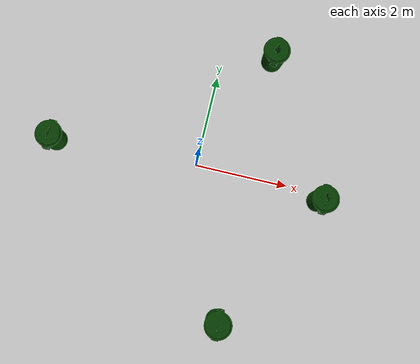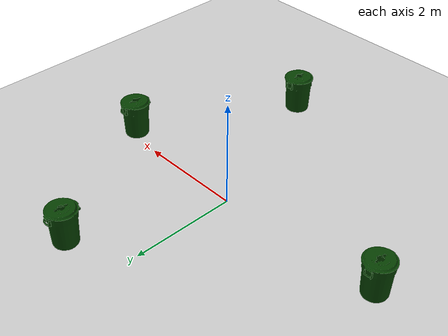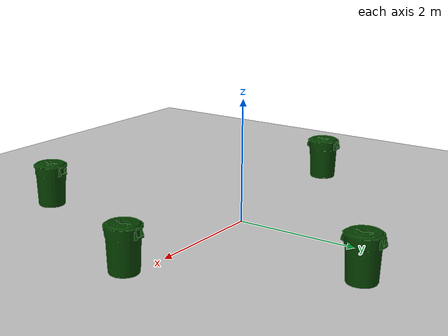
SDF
<sdf version="1.7">
 <world name="default">
  <light name="sun" type="directional">
   <pose>0 0 10 0 -0 0</pose>
   <diffuse>0.8 0.8 0.8 1</diffuse>
   <specular>0.2 0.2 0.2 1</specular>
   <attenuation>
    <range>1000</range>
    <constant>0.9</constant>
    <linear>0.01</linear>
    <quadratic>0.001</quadratic>
   </attenuation>
   <direction>-0.5 0.1 -0.9</direction>
   <spot><inner_angle>0</inner_angle><outer_angle>0</outer_angle><falloff>0</falloff></spot>
  </light>
  <model name="ground_plane">
   <static>1</static>
   <link name="link">
    <collision name="collision">
     <geometry><plane><normal>0 0 1</normal><size>100 100</size></plane></geometry>
     <surface>
      <contact><collide_bitmask>65535</collide_bitmask></contact>
      <friction><ode><mu>100</mu><mu2>50</mu2></ode></friction>
     </surface>
    </collision>
    <visual name="visual">
     <cast_shadows>0</cast_shadows>
     <geometry><plane><normal>0 0 1</normal><size>100 100</size></plane></geometry>
     <material>
      <script><uri>file://media/materials/scripts/gazebo.material</uri><name>Gazebo/Grey</name></script>
     </material>
    </visual>
   </link>
  </model>
  <gravity>0 0 -9.8</gravity>
  <magnetic_field>6e-06 2.3e-05 -4.2e-05</magnetic_field>
  <atmosphere type="adiabatic"/>
  <physics type="ode">
   <max_step_size>0.001</max_step_size>
   <real_time_factor>1</real_time_factor>
   <real_time_update_rate>1000</real_time_update_rate>
  </physics>
  <scene><ambient>0.4 0.4 0.4 1</ambient><background>0.7 0.7 0.7 1</background><shadows>1</shadows></scene>
  <spherical_coordinates>
   <surface_model>EARTH_WGS84</surface_model>
   <latitude_deg>0</latitude_deg>
   <longitude_deg>0</longitude_deg>
   <elevation>0</elevation>
   <heading_deg>0</heading_deg>
  </spherical_coordinates>
  <model name="first_2015_trash_can">
   <link name="link">
    <inertial>
     <pose>0 0 0.3683 0 -0 0</pose>
     <mass>4.83076</mass>
     <inertia>
      <ixx>0.281534</ixx>
      <ixy>0</ixy>
      <ixz>0</ixz>
      <iyy>0.281534</iyy>
      <iyz>0</iyz>
      <izz>0.126223</izz>
     </inertia>
    </inertial>
    <visual name="visual">
     <geometry><mesh><uri>model://first_2015_trash_can/meshes/trash_can.dae</uri></mesh></geometry>
    </visual>
    <collision name="collision">
     <geometry><mesh><uri>model://first_2015_trash_can/meshes/trash_can.dae</uri></mesh></geometry>
    </collision>
   </link>
   <pose>2.70974 -0.158559 -4e-06 5e-06 1.7e-05 -0.000205</pose>
  </model>
  <model name="first_2015_trash_can_0">
   <link name="link">
    <inertial>
     <pose>0 0 0.3683 0 -0 0</pose>
     <mass>4.83076</mass>
     <inertia>
      <ixx>0.281534</ixx>
      <ixy>0</ixy>
      <ixz>0</ixz>
      <iyy>0.281534</iyy>
      <iyz>0</iyz>
      <izz>0.126223</izz>
     </inertia>
    </inertial>
    <visual name="visual">
     <geometry><mesh><uri>model://first_2015_trash_can/meshes/trash_can.dae</uri></mesh></geometry>
    </visual>
    <collision name="collision">
     <geometry><mesh><uri>model://first_2015_trash_can/meshes/trash_can.dae</uri></mesh></geometry>
    </collision>
   </link>
   <pose>-3.08772 -0.177872 1e-06 -2.3e-05 1.7e-05 -0.000304</pose>
  </model>
  <model name="first_2015_trash_can_1">
   <link name="link">
    <inertial>
     <pose>0 0 0.3683 0 -0 0</pose>
     <mass>4.83076</mass>
     <inertia>
      <ixx>0.281534</ixx>
      <ixy>0</ixy>
      <ixz>0</ixz>
      <iyy>0.281534</iyy>
      <iyz>0</iyz>
      <izz>0.126223</izz>
     </inertia>
    </inertial>
    <visual name="visual">
     <geometry><mesh><uri>model://first_2015_trash_can/meshes/trash_can.dae</uri></mesh></geometry>
    </visual>
    <collision name="collision">
     <geometry><mesh><uri>model://first_2015_trash_can/meshes/trash_can.dae</uri></mesh></geometry>
    </collision>
   </link>
   <pose>1.08212 2.63584 -2e-06 1e-06 1.1e-05 -0.000187</pose>
  </model>
  <model name="first_2015_trash_can_2">
   <link name="link">
    <inertial>
     <pose>0 0 0.3683 0 -0 0</pose>
     <mass>4.83076</mass>
     <inertia>
      <ixx>0.281534</ixx>
      <ixy>0</ixy>
      <ixz>0</ixz>
      <iyy>0.281534</iyy>
      <iyz>0</iyz>
      <izz>0.126223</izz>
     </inertia>
    </inertial>
    <visual name="visual">
     <geometry><mesh><uri>model://first_2015_trash_can/meshes/trash_can.dae</uri></mesh></geometry>
    </visual>
    <collision name="collision">
     <geometry><mesh><uri>model://first_2015_trash_can/meshes/trash_can.dae</uri></mesh></geometry>
    </collision>
   </link>
   <pose>1.16913 -3.10565 -3e-06 3.2e-05 9e-06 -3.7e-05</pose>
  </model>
 </world>
</sdf>
